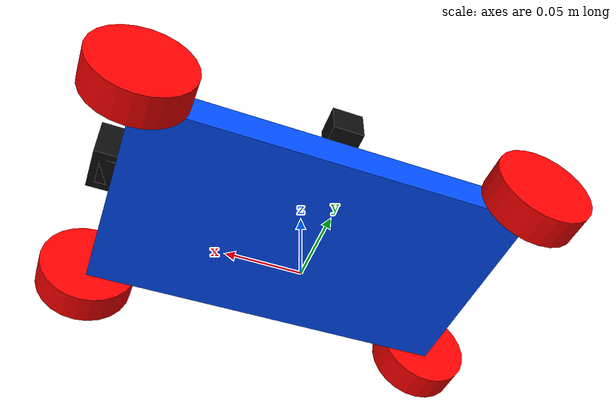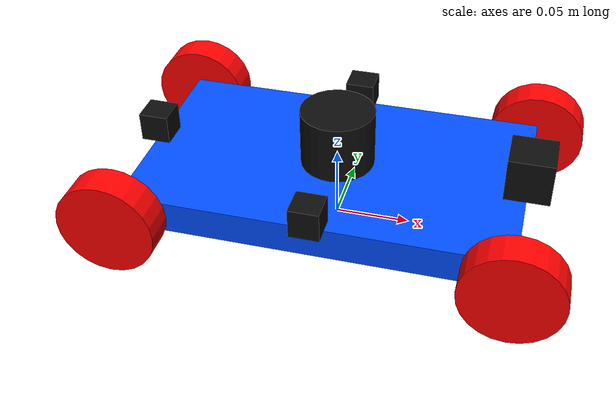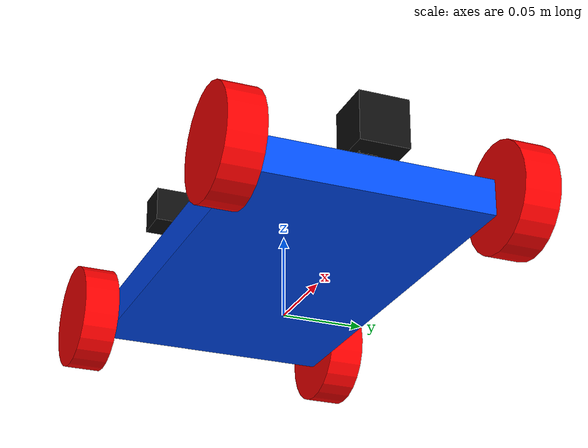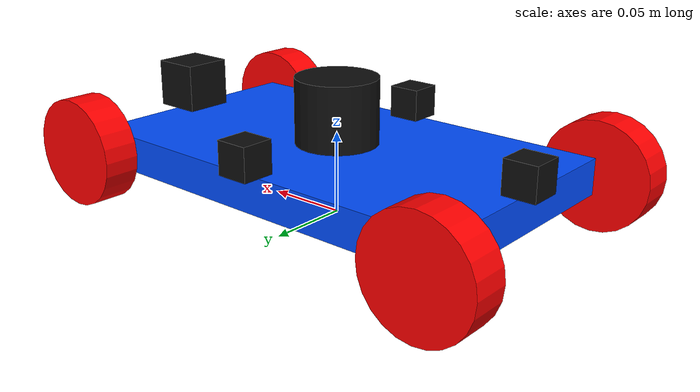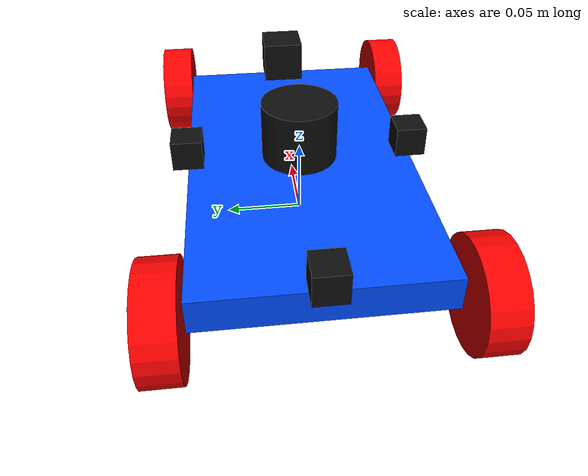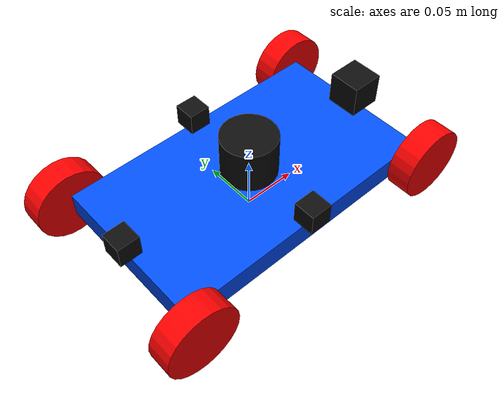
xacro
<?xml version="1.0"?>
<robot xmlns:xacro="http://www.ros.org/wiki/xacro" name="Jorgito_coitito">
    <xacro:include filename="jorgito_description.xacro"/>
    <xacro:include filename="lidar.xacro"/>
    <xacro:include filename="cameras.xacro"/>
    <xacro:include filename="imu.xacro"/>
    <xacro:include filename="rgbd_camera.xacro"/>
    <xacro:include filename="jorgito_gazebo.xacro"/>
</robot>

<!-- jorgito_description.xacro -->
<robot xmlns:xacro="http://www.ros.org/wiki/xacro"
       name="Jorgito_coitito">

    <xacro:property name="scale" value="1.0"/>

    <xacro:property name="chasis_length" value="${0.256*scale}"/>
    <xacro:property name="chasis_width"  value="${0.148*scale}"/>
    <xacro:property name="chasis_height" value="${0.022*scale}"/>
    <xacro:property name="wheel_radius"  value="${0.033*scale}"/>
    <xacro:property name="wheel_width"   value="${0.022*scale}"/>
    <xacro:property name="wheel_x_off"   value="${0.128*scale}"/>
    <xacro:property name="wheel_y_off"   value="${0.085*scale}"/>
    <xacro:property name="chasis_mass" value="0.5"/>
    <xacro:property name="wheel_mass" value="0.05"/>
    <xacro:property name="steer_mass" value="0.01"/>

    <material name="blue"><color rgba="0.0 0.3 1.0 1.0"/></material>
    <material name="black"><color rgba="0.05 0.05 0.05 1.0"/></material>

    <xacro:macro name="box_inertia" params="m l w h">
        <inertial>
            <origin xyz="0 0 0" rpy="0 0 0"/>
            <mass value="${m}"/>
            <inertia ixx="${m*(w*w+h*h)/12}" ixy="0.0" ixz="0.0"
                     iyy="${m*(l*l+h*h)/12}" iyz="0.0"
                     izz="${m*(w*w+l*l)/12}"/>
        </inertial>
    </xacro:macro>

    <xacro:macro name="cylinder_inertia" params="m r l">
        <inertial>
            <origin xyz="0 0 0" rpy="0 0 0"/>
            <mass value="${m}"/>
            <inertia ixx="${m*(3*r*r+l*l)/12}" ixy="0.0" ixz="0.0"
                     iyy="${m*(3*r*r+l*l)/12}" iyz="0.0"
                     izz="${m*r*r/2}"/>
        </inertial>
    </xacro:macro>

    <link name="base_footprint"/>

    <joint name="base_joint" type="fixed">
        <parent link="base_footprint"/>
        <child link="base_link"/>
        <origin xyz="0 0 ${wheel_radius}" rpy="0 0 0"/>
    </joint>

    <link name="base_link">
        <visual>
            <geometry><box size="${chasis_length} ${chasis_width} ${chasis_height}"/></geometry>
            <material name="blue"/>
        </visual>
        <collision>
            <geometry><box size="${chasis_length} ${chasis_width} ${chasis_height}"/></geometry>
        </collision>
        <xacro:box_inertia m="${chasis_mass}" l="${chasis_length}" w="${chasis_width}" h="${chasis_height}"/>
    </link>

    <xacro:macro name="wheel" params="prefix x_off y_off">
        <link name="${prefix}_wheel">
            <visual>
                <origin xyz="0 0 0" rpy="0 0 0"/>
                <geometry><cylinder radius="${wheel_radius}" length="${wheel_width}"/></geometry>
                <material name="${prefix}_wheel_material">
                    <color rgba="1.0 0.0 0.0 1.0"/>
                </material>
            </visual>
            <collision>
                <origin xyz="0 0 0" rpy="0 0 0"/>
                <geometry><cylinder radius="${wheel_radius}" length="${wheel_width}"/></geometry>
            </collision>
            <xacro:cylinder_inertia m="${wheel_mass}" r="${wheel_radius}" l="${wheel_width}"/>
        </link>

        <joint name="${prefix}_wheel_joint" type="continuous">
            <parent link="base_link"/>
            <child link="${prefix}_wheel"/>
            <origin xyz="${x_off} ${y_off} 0" rpy="-1.5708 0 0"/>
            <axis xyz="0 0 1"/>
            <dynamics damping="0.1" friction="0.1"/>
        </joint>
    </xacro:macro>

    <xacro:macro name="steer_wheel" params="prefix x_off y_off">
        <link name="${prefix}_steer_link">
            <inertial>
                <mass value="${steer_mass}"/>
                <inertia ixx="0.00001" ixy="0.0" ixz="0.0"
                         iyy="0.00001" iyz="0.0" izz="0.00001"/>
            </inertial>
        </link>

        <joint name="${prefix}_steer_joint" type="revolute">
            <parent link="base_link"/>
            <child link="${prefix}_steer_link"/>
            <origin xyz="${x_off} ${y_off} 0" rpy="0 0 0"/>
            <axis xyz="0 0 1"/>
            <dynamics damping="0.05" friction="0.05"/>
            <limit lower="-0.6" upper="0.6" effort="10" velocity="5"/>
        </joint>

        <link name="${prefix}_wheel">
            <visual>
                <origin xyz="0 0 0" rpy="0 0 0"/>
                <geometry><cylinder radius="${wheel_radius}" length="${wheel_width}"/></geometry>
                <material name="${prefix}_wheel_material">
                    <color rgba="1.0 0.0 0.0 1.0"/>
                </material>
            </visual>
            <collision>
                <origin xyz="0 0 0" rpy="0 0 0"/>
                <geometry><cylinder radius="${wheel_radius}" length="${wheel_width}"/></geometry>
            </collision>
            <xacro:cylinder_inertia m="${wheel_mass}" r="${wheel_radius}" l="${wheel_width}"/>
        </link>

        <joint name="${prefix}_wheel_joint" type="continuous">
            <parent link="${prefix}_steer_link"/>
            <child link="${prefix}_wheel"/>
            <origin xyz="0 0 0" rpy="-1.5708 0 0"/>
            <axis xyz="0 0 1"/>
            <dynamics damping="0.01" friction="0.01"/>
        </joint>
    </xacro:macro>

    <xacro:wheel prefix="rear_left"   x_off="${-wheel_x_off}" y_off="${wheel_y_off}"/>
    <xacro:wheel prefix="rear_right"  x_off="${-wheel_x_off}" y_off="${-wheel_y_off}"/>
    <xacro:steer_wheel prefix="front_left"  x_off="${wheel_x_off}" y_off="${wheel_y_off}"/>
    <xacro:steer_wheel prefix="front_right" x_off="${wheel_x_off}" y_off="${-wheel_y_off}"/>

</robot>

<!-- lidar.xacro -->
<robot xmlns:xacro="http://www.ros.org/wiki/xacro">

    <xacro:property name="lidar_radius" value="${0.025*scale}"/>
    <xacro:property name="lidar_height" value="${0.04*scale}"/>
    <xacro:property name="lidar_mass"   value="0.05"/>

    <link name="lidar_link">
        <visual>
            <geometry><cylinder radius="${lidar_radius}" length="${lidar_height}"/></geometry>
            <material name="black"/>
        </visual>
        <collision>
            <geometry><cylinder radius="${lidar_radius}" length="${lidar_height}"/></geometry>
        </collision>
        <xacro:cylinder_inertia m="${lidar_mass}" r="${lidar_radius}" l="${lidar_height}"/>
    </link>

    <joint name="lidar_joint" type="fixed">
        <parent link="base_link"/>
        <child link="lidar_link"/>
        <origin xyz="0 0 ${chasis_height/2 + lidar_height/2}" rpy="0 0 0"/>
    </joint>

    <gazebo reference="lidar_link">
        <material>Gazebo/Black</material>
        <sensor name="lidar_sensor" type="gpu_lidar">
            <gz_frame_id>lidar_link</gz_frame_id>
            <pose>0 0 0 0 0 0</pose>
            <topic>scan</topic>
            <update_rate>10</update_rate>
            <always_on>true</always_on>
            <visualize>true</visualize>
            <lidar>
                <scan>
                    <horizontal>
                        <samples>360</samples>
                        <resolution>1</resolution>
                        <min_angle>-3.1416</min_angle>
                        <max_angle>3.1416</max_angle>
                    </horizontal>
                </scan>
                <range>
                    <min>0.10</min>
                    <max>10.0</max>
                    <resolution>0.01</resolution>
                </range>
            </lidar>
        </sensor>
    </gazebo>

</robot>

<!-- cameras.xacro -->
<robot xmlns:xacro="http://www.ros.org/wiki/xacro">

    <xacro:property name="csi_cam_size"   value="0.02"/>
    <xacro:property name="csi_cam_mass"   value="0.02"/>
    <xacro:property name="csi_cam_width"  value="640"/>
    <xacro:property name="csi_cam_height" value="480"/>
    <xacro:property name="csi_cam_hfov"   value="1.4"/>
    <xacro:property name="csi_cam_rate"   value="15"/>

    <xacro:macro name="csi_camera" params="prefix x_off y_off yaw">

        <link name="camera_${prefix}">
            <visual>
                <geometry>
                    <box size="${csi_cam_size} ${csi_cam_size} ${csi_cam_size}"/>
                </geometry>
                <material name="black"/>
            </visual>

            <collision>
                <geometry>
                    <box size="${csi_cam_size} ${csi_cam_size} ${csi_cam_size}"/>
                </geometry>
            </collision>

            <xacro:box_inertia
                m="${csi_cam_mass}"
                l="${csi_cam_size}"
                w="${csi_cam_size}"
                h="${csi_cam_size}"/>
        </link>

        <joint name="camera_${prefix}_joint" type="fixed">
            <parent link="base_link"/>
            <child link="camera_${prefix}"/>
            <origin
                xyz="${x_off} ${y_off} ${chasis_height/2 + csi_cam_size/2}"
                rpy="0 0 ${yaw}"/>
        </joint>

        <gazebo reference="camera_${prefix}">
            <sensor name="camera_${prefix}_sensor" type="camera">
                <gz_frame_id>camera_${prefix}</gz_frame_id>

                <pose>0 0 0 0 0 0</pose>

                <topic>camera_${prefix}</topic>
                <update_rate>${csi_cam_rate}</update_rate>
                <always_on>true</always_on>
                <visualize>false</visualize>

                <camera>
                    <horizontal_fov>${csi_cam_hfov}</horizontal_fov>

                    <image>
                        <width>${csi_cam_width}</width>
                        <height>${csi_cam_height}</height>
                        <format>R8G8B8</format>
                    </image>

                    <clip>
                        <near>0.05</near>
                        <far>15.0</far>
                    </clip>

                    <noise>
                        <type>gaussian</type>
                        <mean>0.0</mean>
                        <stddev>0.007</stddev>
                    </noise>
                </camera>
            </sensor>
        </gazebo>

    </xacro:macro>

    <xacro:csi_camera
        prefix="front"
        x_off="${chasis_length/2}"
        y_off="0"
        yaw="0"/>

    <xacro:csi_camera
        prefix="rear"
        x_off="${-chasis_length/2}"
        y_off="0"
        yaw="3.1416"/>

    <xacro:csi_camera
        prefix="left"
        x_off="0"
        y_off="${chasis_width/2}"
        yaw="1.5708"/>

    <xacro:csi_camera
        prefix="right"
        x_off="0"
        y_off="${-chasis_width/2}"
        yaw="-1.5708"/>

</robot>

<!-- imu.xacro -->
<robot xmlns:xacro="http://www.ros.org/wiki/xacro">

    <xacro:property name="imu_size" value="0.025"/>
    <xacro:property name="imu_mass" value="0.03"/>

    <link name="imu_link">

        <visual>
            <geometry>
                <box size="${imu_size} ${imu_size} ${imu_size}"/>
            </geometry>
            <material name="black"/>
        </visual>

        <collision>
            <geometry>
                <box size="${imu_size} ${imu_size} ${imu_size}"/>
            </geometry>
        </collision>

        <xacro:box_inertia
            m="${imu_mass}"
            l="${imu_size}"
            w="${imu_size}"
            h="${imu_size}"/>

    </link>

    <joint name="imu_joint" type="fixed">
        <parent link="base_link"/>
        <child link="imu_link"/>
        <origin
            xyz="0 0 0.03"
            rpy="0 0 0"/>
    </joint>

    <gazebo reference="imu_link">
        <sensor name="imu_sensor" type="imu">
            <gz_frame_id>imu_link</gz_frame_id>
            <always_on>true</always_on>
            <update_rate>100</update_rate>
            <visualize>true</visualize>

            <imu>

                <angular_velocity>
                    <x>
                        <noise type="gaussian">
                            <mean>0.0</mean>
                            <stddev>0.001</stddev>
                        </noise>
                    </x>
                    <y>
                        <noise type="gaussian">
                            <mean>0.0</mean>
                            <stddev>0.001</stddev>
                        </noise>
                    </y>
                    <z>
                        <noise type="gaussian">
                            <mean>0.0</mean>
                            <stddev>0.001</stddev>
                        </noise>
                    </z>
                </angular_velocity>

                <linear_acceleration>
                    <x>
                        <noise type="gaussian">
                            <mean>0.0</mean>
                            <stddev>0.01</stddev>
                        </noise>
                    </x>
                    <y>
                        <noise type="gaussian">
                            <mean>0.0</mean>
                            <stddev>0.01</stddev>
                        </noise>
                    </y>
                    <z>
                        <noise type="gaussian">
                            <mean>0.0</mean>
                            <stddev>0.01</stddev>
                        </noise>
                    </z>
                </linear_acceleration>

            </imu>

            <topic>imu</topic>

        </sensor>
    </gazebo>

</robot>

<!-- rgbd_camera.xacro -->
<robot xmlns:xacro="http://www.ros.org/wiki/xacro">

    <xacro:property name="rgbd_size"   value="0.03"/>
    <xacro:property name="rgbd_mass"   value="0.05"/>
    <xacro:property name="rgbd_width"  value="640"/>
    <xacro:property name="rgbd_height" value="480"/>
    <xacro:property name="rgbd_hfov"   value="1.4"/>
    <xacro:property name="rgbd_rate"   value="15"/>

    <link name="rgbd_camera_link">
        <visual>
            <geometry>
                <box size="${rgbd_size} ${rgbd_size} ${rgbd_size}"/>
            </geometry>
            <material name="black"/>
        </visual>

        <collision>
            <geometry>
                <box size="${rgbd_size} ${rgbd_size} ${rgbd_size}"/>
            </geometry>
        </collision>

        <xacro:box_inertia
            m="${rgbd_mass}"
            l="${rgbd_size}"
            w="${rgbd_size}"
            h="${rgbd_size}"/>
    </link>

    <joint name="rgbd_camera_joint" type="fixed">
        <parent link="base_link"/>
        <child link="rgbd_camera_link"/>
        <origin
            xyz="${chasis_length/2} 0 ${chasis_height/2 + rgbd_size/2}"
            rpy="0 0 0"/>
    </joint>

    <gazebo reference="rgbd_camera_link">
        <sensor name="rgbd_camera_sensor" type="rgbd_camera">
            <gz_frame_id>rgbd_camera_link</gz_frame_id>
            <pose>0 0 0 0 0 0</pose>

            <topic>rgbd_camera</topic>

            <update_rate>${rgbd_rate}</update_rate>
            <always_on>true</always_on>
            <visualize>true</visualize>

            <camera>
                <horizontal_fov>${rgbd_hfov}</horizontal_fov>

                <image>
                    <width>${rgbd_width}</width>
                    <height>${rgbd_height}</height>
                    <format>R8G8B8</format>
                </image>

                <clip>
                    <near>0.05</near>
                    <far>15.0</far>
                </clip>

                <noise>
                    <type>gaussian</type>
                    <mean>0.0</mean>
                    <stddev>0.007</stddev>
                </noise>
            </camera>
        </sensor>
    </gazebo>

</robot>
